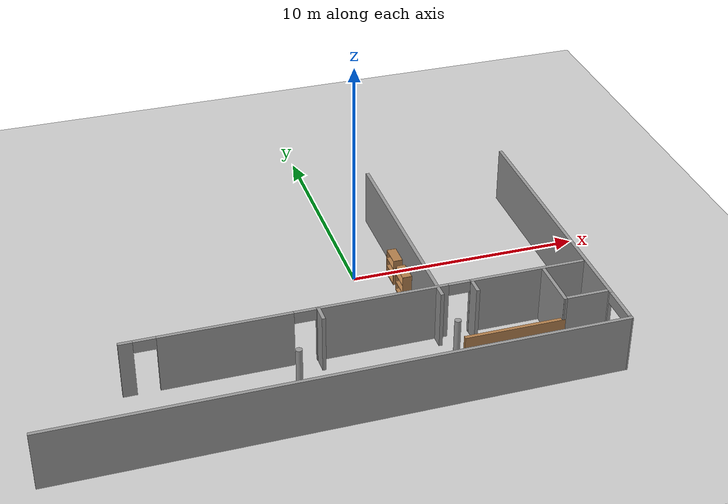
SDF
<sdf version="1.7">
 <world name="default">
  <model name="ground_plane">
   <static>1</static>
   <link name="link">
    <collision name="collision">
     <geometry><plane><normal>0 0 1</normal><size>100 100</size></plane></geometry>
     <surface><friction><ode><mu>100</mu><mu2>50</mu2></ode></friction></surface>
    </collision>
    <visual name="visual">
     <cast_shadows>0</cast_shadows>
     <geometry><plane><normal>0 0 1</normal><size>100 100</size></plane></geometry>
     <material>
      <script><uri>file://media/materials/scripts/gazebo.material</uri><name>Gazebo/Grey</name></script>
     </material>
    </visual>
   </link>
  </model>
  <model name="batimentH">
   <link name="Wall_37">
    <pose>7.50318 1.74251 0 0 0 -1.5708</pose>
    <visual name="Wall_37_Visual">
     <pose>0 0 1.25 0 -0 0</pose>
     <geometry><box><size>9.75 0.15 2.5</size></box></geometry>
     <material>
      <script><uri>file://media/materials/scripts/gazebo.material</uri><name>Gazebo/Grey</name></script>
      <ambient>1 1 1 1</ambient>
      <shader type="pixel"/>
     </material>
     <meta><layer>0</layer></meta>
    </visual>
    <collision name="Wall_37_Collision">
     <pose>0 0 1.25 0 -0 0</pose>
     <geometry><box><size>9.75 0.15 2.5</size></box></geometry>
     <surface>
      <friction>
       <ode><mu>1</mu><mu2>1</mu2><fdir1>0 0 0</fdir1><slip1>0</slip1><slip2>0</slip2></ode>
       <torsional>
        <coefficient>1</coefficient>
        <patch_radius>0</patch_radius>
        <surface_radius>0</surface_radius>
        <use_patch_radius>1</use_patch_radius>
        <ode><slip>0</slip></ode>
       </torsional>
      </friction>
      <bounce><restitution_coefficient>0</restitution_coefficient><threshold>1e+06</threshold></bounce>
      <contact>
       <collide_without_contact>0</collide_without_contact>
       <collide_without_contact_bitmask>1</collide_without_contact_bitmask>
       <collide_bitmask>1</collide_bitmask>
       <ode>
        <soft_cfm>0</soft_cfm>
        <soft_erp>0.2</soft_erp>
        <kp>1e+13</kp>
        <kd>1</kd>
        <max_vel>0.01</max_vel>
        <min_depth>0</min_depth>
       </ode>
       <bullet>
        <split_impulse>1</split_impulse>
        <split_impulse_penetration_threshold>-0.01</split_impulse_penetration_threshold>
        <soft_cfm>0</soft_cfm>
        <soft_erp>0.2</soft_erp>
        <kp>1e+13</kp>
        <kd>1</kd>
       </bullet>
      </contact>
     </surface>
    </collision>
   </link>
   <link name="Wall_39">
    <pose>4.29019 -2.53685 0 0 -0 0</pose>
    <visual name="Wall_39_Visual_0">
     <pose>-9.21688 0 1.25 0 -0 0</pose>
     <geometry><box><size>0.566242 0.15 2.5</size></box></geometry>
     <material>
      <script><uri>file://media/materials/scripts/gazebo.material</uri><name>Gazebo/Grey</name></script>
      <ambient>1 1 1 1</ambient>
      <shader type="pixel"/>
     </material>
     <meta><layer>0</layer></meta>
    </visual>
    <visual name="Wall_39_Visual_1">
     <pose>-5.3521 0 1.25 0 -0 0</pose>
     <geometry><box><size>5.36332 0.15 2.5</size></box></geometry>
     <material>
      <script><uri>file://media/materials/scripts/gazebo.material</uri><name>Gazebo/Grey</name></script>
      <ambient>1 1 1 1</ambient>
      <shader type="pixel"/>
     </material>
     <meta><layer>0</layer></meta>
    </visual>
    <visual name="Wall_39_Visual_2">
     <pose>0.951247 0 1.25 0 -0 0</pose>
     <geometry><box><size>5.44336 0.15 2.5</size></box></geometry>
     <material>
      <script><uri>file://media/materials/scripts/gazebo.material</uri><name>Gazebo/Grey</name></script>
      <ambient>1 1 1 1</ambient>
      <shader type="pixel"/>
     </material>
     <meta><layer>0</layer></meta>
    </visual>
    <visual name="Wall_39_Visual_3">
     <pose>7.03646 0 1.25 0 -0 0</pose>
     <geometry><box><size>4.92707 0.15 2.5</size></box></geometry>
     <material>
      <script><uri>file://media/materials/scripts/gazebo.material</uri><name>Gazebo/Grey</name></script>
      <ambient>1 1 1 1</ambient>
      <shader type="pixel"/>
     </material>
     <meta><layer>0</layer></meta>
    </visual>
    <visual name="Wall_39_Visual_4">
     <pose>-8.48376 0 2.25 0 -0 0</pose>
     <geometry><box><size>0.9 0.15 0.5</size></box></geometry>
     <material>
      <script><uri>file://media/materials/scripts/gazebo.material</uri><name>Gazebo/Grey</name></script>
      <ambient>1 1 1 1</ambient>
      <shader type="pixel"/>
     </material>
     <meta><layer>0</layer></meta>
    </visual>
    <visual name="Wall_39_Visual_5">
     <pose>-2.22043 0 2.25 0 -0 0</pose>
     <geometry><box><size>0.9 0.15 0.5</size></box></geometry>
     <material>
      <script><uri>file://media/materials/scripts/gazebo.material</uri><name>Gazebo/Grey</name></script>
      <ambient>1 1 1 1</ambient>
      <shader type="pixel"/>
     </material>
     <meta><layer>0</layer></meta>
    </visual>
    <visual name="Wall_39_Visual_6">
     <pose>4.12293 0 2.25 0 -0 0</pose>
     <geometry><box><size>0.9 0.15 0.5</size></box></geometry>
     <material>
      <script><uri>file://media/materials/scripts/gazebo.material</uri><name>Gazebo/Grey</name></script>
      <ambient>1 1 1 1</ambient>
      <shader type="pixel"/>
     </material>
     <meta><layer>0</layer></meta>
    </visual>
    <collision name="Wall_39_Collision_0">
     <pose>-9.21688 0 1.25 0 -0 0</pose>
     <geometry><box><size>0.566242 0.15 2.5</size></box></geometry>
     <surface>
      <friction>
       <ode><mu>1</mu><mu2>1</mu2><fdir1>0 0 0</fdir1><slip1>0</slip1><slip2>0</slip2></ode>
       <torsional>
        <coefficient>1</coefficient>
        <patch_radius>0</patch_radius>
        <surface_radius>0</surface_radius>
        <use_patch_radius>1</use_patch_radius>
        <ode><slip>0</slip></ode>
       </torsional>
      </friction>
      <bounce><restitution_coefficient>0</restitution_coefficient><threshold>1e+06</threshold></bounce>
      <contact>
       <collide_without_contact>0</collide_without_contact>
       <collide_without_contact_bitmask>1</collide_without_contact_bitmask>
       <collide_bitmask>1</collide_bitmask>
       <ode>
        <soft_cfm>0</soft_cfm>
        <soft_erp>0.2</soft_erp>
        <kp>1e+13</kp>
        <kd>1</kd>
        <max_vel>0.01</max_vel>
        <min_depth>0</min_depth>
       </ode>
       <bullet>
        <split_impulse>1</split_impulse>
        <split_impulse_penetration_threshold>-0.01</split_impulse_penetration_threshold>
        <soft_cfm>0</soft_cfm>
        <soft_erp>0.2</soft_erp>
        <kp>1e+13</kp>
        <kd>1</kd>
       </bullet>
      </contact>
     </surface>
    </collision>
    <collision name="Wall_39_Collision_2">
     <pose>0.951247 0 1.25 0 -0 0</pose>
     <geometry><box><size>5.44336 0.15 2.5</size></box></geometry>
     <surface>
      <friction>
       <ode><mu>1</mu><mu2>1</mu2><fdir1>0 0 0</fdir1><slip1>0</slip1><slip2>0</slip2></ode>
       <torsional>
        <coefficient>1</coefficient>
        <patch_radius>0</patch_radius>
        <surface_radius>0</surface_radius>
        <use_patch_radius>1</use_patch_radius>
        <ode><slip>0</slip></ode>
       </torsional>
      </friction>
      <bounce><restitution_coefficient>0</restitution_coefficient><threshold>1e+06</threshold></bounce>
      <contact>
       <collide_without_contact>0</collide_without_contact>
       <collide_without_contact_bitmask>1</collide_without_contact_bitmask>
       <collide_bitmask>1</collide_bitmask>
       <ode>
        <soft_cfm>0</soft_cfm>
        <soft_erp>0.2</soft_erp>
        <kp>1e+13</kp>
        <kd>1</kd>
        <max_vel>0.01</max_vel>
        <min_depth>0</min_depth>
       </ode>
       <bullet>
        <split_impulse>1</split_impulse>
        <split_impulse_penetration_threshold>-0.01</split_impulse_penetration_threshold>
        <soft_cfm>0</soft_cfm>
        <soft_erp>0.2</soft_erp>
        <kp>1e+13</kp>
        <kd>1</kd>
       </bullet>
      </contact>
     </surface>
    </collision>
    <collision name="Wall_39_Collision_1">
     <pose>-5.3521 0 1.25 0 -0 0</pose>
     <geometry><box><size>5.36332 0.15 2.5</size></box></geometry>
     <surface>
      <friction>
       <ode><mu>1</mu><mu2>1</mu2><fdir1>0 0 0</fdir1><slip1>0</slip1><slip2>0</slip2></ode>
       <torsional>
        <coefficient>1</coefficient>
        <patch_radius>0</patch_radius>
        <surface_radius>0</surface_radius>
        <use_patch_radius>1</use_patch_radius>
        <ode><slip>0</slip></ode>
       </torsional>
      </friction>
      <bounce><restitution_coefficient>0</restitution_coefficient><threshold>1e+06</threshold></bounce>
      <contact>
       <collide_without_contact>0</collide_without_contact>
       <collide_without_contact_bitmask>1</collide_without_contact_bitmask>
       <collide_bitmask>1</collide_bitmask>
       <ode>
        <soft_cfm>0</soft_cfm>
        <soft_erp>0.2</soft_erp>
        <kp>1e+13</kp>
        <kd>1</kd>
        <max_vel>0.01</max_vel>
        <min_depth>0</min_depth>
       </ode>
       <bullet>
        <split_impulse>1</split_impulse>
        <split_impulse_penetration_threshold>-0.01</split_impulse_penetration_threshold>
        <soft_cfm>0</soft_cfm>
        <soft_erp>0.2</soft_erp>
        <kp>1e+13</kp>
        <kd>1</kd>
       </bullet>
      </contact>
     </surface>
    </collision>
    <collision name="Wall_39_Collision_3">
     <pose>7.03646 0 1.25 0 -0 0</pose>
     <geometry><box><size>4.92707 0.15 2.5</size></box></geometry>
     <surface>
      <friction>
       <ode><mu>1</mu><mu2>1</mu2><fdir1>0 0 0</fdir1><slip1>0</slip1><slip2>0</slip2></ode>
       <torsional>
        <coefficient>1</coefficient>
        <patch_radius>0</patch_radius>
        <surface_radius>0</surface_radius>
        <use_patch_radius>1</use_patch_radius>
        <ode><slip>0</slip></ode>
       </torsional>
      </friction>
      <bounce><restitution_coefficient>0</restitution_coefficient><threshold>1e+06</threshold></bounce>
      <contact>
       <collide_without_contact>0</collide_without_contact>
       <collide_without_contact_bitmask>1</collide_without_contact_bitmask>
       <collide_bitmask>1</collide_bitmask>
       <ode>
        <soft_cfm>0</soft_cfm>
        <soft_erp>0.2</soft_erp>
        <kp>1e+13</kp>
        <kd>1</kd>
        <max_vel>0.01</max_vel>
        <min_depth>0</min_depth>
       </ode>
       <bullet>
        <split_impulse>1</split_impulse>
        <split_impulse_penetration_threshold>-0.01</split_impulse_penetration_threshold>
        <soft_cfm>0</soft_cfm>
        <soft_erp>0.2</soft_erp>
        <kp>1e+13</kp>
        <kd>1</kd>
       </bullet>
      </contact>
     </surface>
    </collision>
    <collision name="Wall_39_Collision_4">
     <pose>-8.48376 0 2.25 0 -0 0</pose>
     <geometry><box><size>0.9 0.15 0.5</size></box></geometry>
     <surface>
      <friction>
       <ode><mu>1</mu><mu2>1</mu2><fdir1>0 0 0</fdir1><slip1>0</slip1><slip2>0</slip2></ode>
       <torsional>
        <coefficient>1</coefficient>
        <patch_radius>0</patch_radius>
        <surface_radius>0</surface_radius>
        <use_patch_radius>1</use_patch_radius>
        <ode><slip>0</slip></ode>
       </torsional>
      </friction>
      <bounce><restitution_coefficient>0</restitution_coefficient><threshold>1e+06</threshold></bounce>
      <contact>
       <collide_without_contact>0</collide_without_contact>
       <collide_without_contact_bitmask>1</collide_without_contact_bitmask>
       <collide_bitmask>1</collide_bitmask>
       <ode>
        <soft_cfm>0</soft_cfm>
        <soft_erp>0.2</soft_erp>
        <kp>1e+13</kp>
        <kd>1</kd>
        <max_vel>0.01</max_vel>
        <min_depth>0</min_depth>
       </ode>
       <bullet>
        <split_impulse>1</split_impulse>
        <split_impulse_penetration_threshold>-0.01</split_impulse_penetration_threshold>
        <soft_cfm>0</soft_cfm>
        <soft_erp>0.2</soft_erp>
        <kp>1e+13</kp>
        <kd>1</kd>
       </bullet>
      </contact>
     </surface>
    </collision>
    <collision name="Wall_39_Collision_5">
     <pose>-2.22043 0 2.25 0 -0 0</pose>
     <geometry><box><size>0.9 0.15 0.5</size></box></geometry>
     <surface>
      <friction>
       <ode><mu>1</mu><mu2>1</mu2><fdir1>0 0 0</fdir1><slip1>0</slip1><slip2>0</slip2></ode>
       <torsional>
        <coefficient>1</coefficient>
        <patch_radius>0</patch_radius>
        <surface_radius>0</surface_radius>
        <use_patch_radius>1</use_patch_radius>
        <ode><slip>0</slip></ode>
       </torsional>
      </friction>
      <bounce><restitution_coefficient>0</restitution_coefficient><threshold>1e+06</threshold></bounce>
      <contact>
       <collide_without_contact>0</collide_without_contact>
       <collide_without_contact_bitmask>1</collide_without_contact_bitmask>
       <collide_bitmask>1</collide_bitmask>
       <ode>
        <soft_cfm>0</soft_cfm>
        <soft_erp>0.2</soft_erp>
        <kp>1e+13</kp>
        <kd>1</kd>
        <max_vel>0.01</max_vel>
        <min_depth>0</min_depth>
       </ode>
       <bullet>
        <split_impulse>1</split_impulse>
        <split_impulse_penetration_threshold>-0.01</split_impulse_penetration_threshold>
        <soft_cfm>0</soft_cfm>
        <soft_erp>0.2</soft_erp>
        <kp>1e+13</kp>
        <kd>1</kd>
       </bullet>
      </contact>
     </surface>
    </collision>
    <collision name="Wall_39_Collision_6">
     <pose>4.12293 0 2.25 0 -0 0</pose>
     <geometry><box><size>0.9 0.15 0.5</size></box></geometry>
     <surface>
      <friction>
       <ode><mu>1</mu><mu2>1</mu2><fdir1>0 0 0</fdir1><slip1>0</slip1><slip2>0</slip2></ode>
       <torsional>
        <coefficient>1</coefficient>
        <patch_radius>0</patch_radius>
        <surface_radius>0</surface_radius>
        <use_patch_radius>1</use_patch_radius>
        <ode><slip>0</slip></ode>
       </torsional>
      </friction>
      <bounce><restitution_coefficient>0</restitution_coefficient><threshold>1e+06</threshold></bounce>
      <contact>
       <collide_without_contact>0</collide_without_contact>
       <collide_without_contact_bitmask>1</collide_without_contact_bitmask>
       <collide_bitmask>1</collide_bitmask>
       <ode>
        <soft_cfm>0</soft_cfm>
        <soft_erp>0.2</soft_erp>
        <kp>1e+13</kp>
        <kd>1</kd>
        <max_vel>0.01</max_vel>
        <min_depth>0</min_depth>
       </ode>
       <bullet>
        <split_impulse>1</split_impulse>
        <split_impulse_penetration_threshold>-0.01</split_impulse_penetration_threshold>
        <soft_cfm>0</soft_cfm>
        <soft_erp>0.2</soft_erp>
        <kp>1e+13</kp>
        <kd>1</kd>
       </bullet>
      </contact>
     </surface>
    </collision>
   </link>
   <link name="Wall_42">
    <pose>2.61433 -2.89979 0 0 0 -1.5708</pose>
    <visual name="Wall_42_Visual">
     <pose>0 0 1.25 0 -0 0</pose>
     <geometry><box><size>0.75 0.15 2.5</size></box></geometry>
     <material>
      <script><uri>file://media/materials/scripts/gazebo.material</uri><name>Gazebo/Grey</name></script>
      <ambient>1 1 1 1</ambient>
      <shader type="pixel"/>
     </material>
     <meta><layer>0</layer></meta>
    </visual>
    <collision name="Wall_42_Collision">
     <pose>0 0 1.25 0 -0 0</pose>
     <geometry><box><size>0.75 0.15 2.5</size></box></geometry>
     <surface>
      <friction>
       <ode><mu>1</mu><mu2>1</mu2><fdir1>0 0 0</fdir1><slip1>0</slip1><slip2>0</slip2></ode>
       <torsional>
        <coefficient>1</coefficient>
        <patch_radius>0</patch_radius>
        <surface_radius>0</surface_radius>
        <use_patch_radius>1</use_patch_radius>
        <ode><slip>0</slip></ode>
       </torsional>
      </friction>
      <bounce><restitution_coefficient>0</restitution_coefficient><threshold>1e+06</threshold></bounce>
      <contact>
       <collide_without_contact>0</collide_without_contact>
       <collide_without_contact_bitmask>1</collide_without_contact_bitmask>
       <collide_bitmask>1</collide_bitmask>
       <ode>
        <soft_cfm>0</soft_cfm>
        <soft_erp>0.2</soft_erp>
        <kp>1e+13</kp>
        <kd>1</kd>
        <max_vel>0.01</max_vel>
        <min_depth>0</min_depth>
       </ode>
       <bullet>
        <split_impulse>1</split_impulse>
        <split_impulse_penetration_threshold>-0.01</split_impulse_penetration_threshold>
        <soft_cfm>0</soft_cfm>
        <soft_erp>0.2</soft_erp>
        <kp>1e+13</kp>
        <kd>1</kd>
       </bullet>
      </contact>
     </surface>
    </collision>
   </link>
   <link name="Wall_46">
    <pose>8.94655 -2.90008 0 0 0 -1.5708</pose>
    <visual name="Wall_46_Visual">
     <pose>0 0 1.25 0 -0 0</pose>
     <geometry><box><size>0.75 0.15 2.5</size></box></geometry>
     <material>
      <script><uri>file://media/materials/scripts/gazebo.material</uri><name>Gazebo/Grey</name></script>
      <ambient>1 1 1 1</ambient>
      <shader type="pixel"/>
     </material>
     <meta><layer>0</layer></meta>
    </visual>
    <collision name="Wall_46_Collision">
     <pose>0 0 1.25 0 -0 0</pose>
     <geometry><box><size>0.75 0.15 2.5</size></box></geometry>
     <surface>
      <friction>
       <ode><mu>1</mu><mu2>1</mu2><fdir1>0 0 0</fdir1><slip1>0</slip1><slip2>0</slip2></ode>
       <torsional>
        <coefficient>1</coefficient>
        <patch_radius>0</patch_radius>
        <surface_radius>0</surface_radius>
        <use_patch_radius>1</use_patch_radius>
        <ode><slip>0</slip></ode>
       </torsional>
      </friction>
      <bounce><restitution_coefficient>0</restitution_coefficient><threshold>1e+06</threshold></bounce>
      <contact>
       <collide_without_contact>0</collide_without_contact>
       <collide_without_contact_bitmask>1</collide_without_contact_bitmask>
       <collide_bitmask>1</collide_bitmask>
       <ode>
        <soft_cfm>0</soft_cfm>
        <soft_erp>0.2</soft_erp>
        <kp>1e+13</kp>
        <kd>1</kd>
        <max_vel>0.01</max_vel>
        <min_depth>0</min_depth>
       </ode>
       <bullet>
        <split_impulse>1</split_impulse>
        <split_impulse_penetration_threshold>-0.01</split_impulse_penetration_threshold>
        <soft_cfm>0</soft_cfm>
        <soft_erp>0.2</soft_erp>
        <kp>1e+13</kp>
        <kd>1</kd>
       </bullet>
      </contact>
     </surface>
    </collision>
   </link>
   <link name="Wall_52">
    <pose>2.47315 -6.68173 0 0 -0 0.000539</pose>
    <visual name="Wall_52_Visual">
     <pose>0 0 1.25 0 -0 0</pose>
     <geometry><box><size>22.9929 0.15 2.5</size></box></geometry>
     <material>
      <script><uri>file://media/materials/scripts/gazebo.material</uri><name>Gazebo/Grey</name></script>
      <ambient>1 1 1 1</ambient>
      <shader type="pixel"/>
     </material>
     <meta><layer>0</layer></meta>
    </visual>
    <collision name="Wall_52_Collision">
     <pose>0 0 1.25 0 -0 0</pose>
     <geometry><box><size>22.9929 0.15 2.5</size></box></geometry>
     <surface>
      <friction>
       <ode><mu>1</mu><mu2>1</mu2><fdir1>0 0 0</fdir1><slip1>0</slip1><slip2>0</slip2></ode>
       <torsional>
        <coefficient>1</coefficient>
        <patch_radius>0</patch_radius>
        <surface_radius>0</surface_radius>
        <use_patch_radius>1</use_patch_radius>
        <ode><slip>0</slip></ode>
       </torsional>
      </friction>
      <bounce><restitution_coefficient>0</restitution_coefficient><threshold>1e+06</threshold></bounce>
      <contact>
       <collide_without_contact>0</collide_without_contact>
       <collide_without_contact_bitmask>1</collide_without_contact_bitmask>
       <collide_bitmask>1</collide_bitmask>
       <ode>
        <soft_cfm>0</soft_cfm>
        <soft_erp>0.2</soft_erp>
        <kp>1e+13</kp>
        <kd>1</kd>
        <max_vel>0.01</max_vel>
        <min_depth>0</min_depth>
       </ode>
       <bullet>
        <split_impulse>1</split_impulse>
        <split_impulse_penetration_threshold>-0.01</split_impulse_penetration_threshold>
        <soft_cfm>0</soft_cfm>
        <soft_erp>0.2</soft_erp>
        <kp>1e+13</kp>
        <kd>1</kd>
       </bullet>
      </contact>
     </surface>
    </collision>
   </link>
   <link name="Wall_53">
    <pose>13.8985 -0.010927 0 0 -0 1.57021</pose>
    <visual name="Wall_53_Visual_0">
     <pose>-6.63903 0 1.25 0 -0 0</pose>
     <geometry><box><size>0.201223 0.15 2.5</size></box></geometry>
     <material>
      <script><uri>file://media/materials/scripts/gazebo.material</uri><name>Gazebo/Grey</name></script>
      <ambient>1 1 1 1</ambient>
      <shader type="pixel"/>
     </material>
     <meta><layer>0</layer></meta>
    </visual>
    <visual name="Wall_53_Visual_1">
     <pose>0.916637 0 1.25 0 -0 0</pose>
     <geometry><box><size>11.646 0.15 2.5</size></box></geometry>
     <material>
      <script><uri>file://media/materials/scripts/gazebo.material</uri><name>Gazebo/Grey</name></script>
      <ambient>1 1 1 1</ambient>
      <shader type="pixel"/>
     </material>
     <meta><layer>0</layer></meta>
    </visual>
    <visual name="Wall_53_Visual_2">
     <pose>-5.72239 0 2.25 0 -0 0</pose>
     <geometry><box><size>1.63205 0.15 0.5</size></box></geometry>
     <material>
      <script><uri>file://media/materials/scripts/gazebo.material</uri><name>Gazebo/Grey</name></script>
      <ambient>1 1 1 1</ambient>
      <shader type="pixel"/>
     </material>
     <meta><layer>0</layer></meta>
    </visual>
    <collision name="Wall_53_Collision_0">
     <pose>-6.63903 0 1.25 0 -0 0</pose>
     <geometry><box><size>0.201223 0.15 2.5</size></box></geometry>
     <surface>
      <friction>
       <ode><mu>1</mu><mu2>1</mu2><fdir1>0 0 0</fdir1><slip1>0</slip1><slip2>0</slip2></ode>
       <torsional>
        <coefficient>1</coefficient>
        <patch_radius>0</patch_radius>
        <surface_radius>0</surface_radius>
        <use_patch_radius>1</use_patch_radius>
        <ode><slip>0</slip></ode>
       </torsional>
      </friction>
      <bounce><restitution_coefficient>0</restitution_coefficient><threshold>1e+06</threshold></bounce>
      <contact>
       <collide_without_contact>0</collide_without_contact>
       <collide_without_contact_bitmask>1</collide_without_contact_bitmask>
       <collide_bitmask>1</collide_bitmask>
       <ode>
        <soft_cfm>0</soft_cfm>
        <soft_erp>0.2</soft_erp>
        <kp>1e+13</kp>
        <kd>1</kd>
        <max_vel>0.01</max_vel>
        <min_depth>0</min_depth>
       </ode>
       <bullet>
        <split_impulse>1</split_impulse>
        <split_impulse_penetration_threshold>-0.01</split_impulse_penetration_threshold>
        <soft_cfm>0</soft_cfm>
        <soft_erp>0.2</soft_erp>
        <kp>1e+13</kp>
        <kd>1</kd>
       </bullet>
      </contact>
     </surface>
    </collision>
    <collision name="Wall_53_Collision_1">
     <pose>0.916637 0 1.25 0 -0 0</pose>
     <geometry><box><size>11.646 0.15 2.5</size></box></geometry>
     <surface>
      <friction>
       <ode><mu>1</mu><mu2>1</mu2><fdir1>0 0 0</fdir1><slip1>0</slip1><slip2>0</slip2></ode>
       <torsional>
        <coefficient>1</coefficient>
        <patch_radius>0</patch_radius>
        <surface_radius>0</surface_radius>
        <use_patch_radius>1</use_patch_radius>
        <ode><slip>0</slip></ode>
       </torsional>
      </friction>
      <bounce><restitution_coefficient>0</restitution_coefficient><threshold>1e+06</threshold></bounce>
      <contact>
       <collide_without_contact>0</collide_without_contact>
       <collide_without_contact_bitmask>1</collide_without_contact_bitmask>
       <collide_bitmask>1</collide_bitmask>
       <ode>
        <soft_cfm>0</soft_cfm>
        <soft_erp>0.2</soft_erp>
        <kp>1e+13</kp>
        <kd>1</kd>
        <max_vel>0.01</max_vel>
        <min_depth>0</min_depth>
       </ode>
       <bullet>
        <split_impulse>1</split_impulse>
        <split_impulse_penetration_threshold>-0.01</split_impulse_penetration_threshold>
        <soft_cfm>0</soft_cfm>
        <soft_erp>0.2</soft_erp>
        <kp>1e+13</kp>
        <kd>1</kd>
       </bullet>
      </contact>
     </surface>
    </collision>
    <collision name="Wall_53_Collision_2">
     <pose>-5.72239 0 2.25 0 -0 0</pose>
     <geometry><box><size>1.63205 0.15 0.5</size></box></geometry>
     <surface>
      <friction>
       <ode><mu>1</mu><mu2>1</mu2><fdir1>0 0 0</fdir1><slip1>0</slip1><slip2>0</slip2></ode>
       <torsional>
        <coefficient>1</coefficient>
        <patch_radius>0</patch_radius>
        <surface_radius>0</surface_radius>
        <use_patch_radius>1</use_patch_radius>
        <ode><slip>0</slip></ode>
       </torsional>
      </friction>
      <bounce><restitution_coefficient>0</restitution_coefficient><threshold>1e+06</threshold></bounce>
      <contact>
       <collide_without_contact>0</collide_without_contact>
       <collide_without_contact_bitmask>1</collide_without_contact_bitmask>
       <collide_bitmask>1</collide_bitmask>
       <ode>
        <soft_cfm>0</soft_cfm>
        <soft_erp>0.2</soft_erp>
        <kp>1e+13</kp>
        <kd>1</kd>
        <max_vel>0.01</max_vel>
        <min_depth>0</min_depth>
       </ode>
       <bullet>
        <split_impulse>1</split_impulse>
        <split_impulse_penetration_threshold>-0.01</split_impulse_penetration_threshold>
        <soft_cfm>0</soft_cfm>
        <soft_erp>0.2</soft_erp>
        <kp>1e+13</kp>
        <kd>1</kd>
       </bullet>
      </contact>
     </surface>
    </collision>
   </link>
   <link name="Wall_55">
    <pose>9.9687 -4.75165 0 0 -0 3.14093</pose>
    <visual name="Wall_55_Visual">
     <pose>0 0 0.75 0 -0 0</pose>
     <geometry><box><size>4.21151 0.15 1.5</size></box></geometry>
     <material>
      <script><uri>file://media/materials/scripts/gazebo.material</uri><name>Gazebo/Wood</name></script>
      <ambient>1 1 1 1</ambient>
      <shader type="pixel"/>
     </material>
     <meta><layer>0</layer></meta>
    </visual>
    <collision name="Wall_55_Collision">
     <pose>0 0 0.75 0 -0 0</pose>
     <geometry><box><size>4.21151 0.15 1.5</size></box></geometry>
     <surface>
      <friction>
       <ode><mu>1</mu><mu2>1</mu2><fdir1>0 0 0</fdir1><slip1>0</slip1><slip2>0</slip2></ode>
       <torsional>
        <coefficient>1</coefficient>
        <patch_radius>0</patch_radius>
        <surface_radius>0</surface_radius>
        <use_patch_radius>1</use_patch_radius>
        <ode><slip>0</slip></ode>
       </torsional>
      </friction>
      <bounce><restitution_coefficient>0</restitution_coefficient><threshold>1e+06</threshold></bounce>
      <contact>
       <collide_without_contact>0</collide_without_contact>
       <collide_without_contact_bitmask>1</collide_without_contact_bitmask>
       <collide_bitmask>1</collide_bitmask>
       <ode>
        <soft_cfm>0</soft_cfm>
        <soft_erp>0.2</soft_erp>
        <kp>1e+13</kp>
        <kd>1</kd>
        <max_vel>0.01</max_vel>
        <min_depth>0</min_depth>
       </ode>
       <bullet>
        <split_impulse>1</split_impulse>
        <split_impulse_penetration_threshold>-0.01</split_impulse_penetration_threshold>
        <soft_cfm>0</soft_cfm>
        <soft_erp>0.2</soft_erp>
        <kp>1e+13</kp>
        <kd>1</kd>
       </bullet>
      </contact>
     </surface>
    </collision>
   </link>
   <link name="Wall_57">
    <pose>12.0044 -3.65982 0 0 0 -1.57287</pose>
    <visual name="Wall_57_Visual">
     <pose>0 0 1.25 0 -0 0</pose>
     <geometry><box><size>2.33135 0.15 2.5</size></box></geometry>
     <material>
      <script><uri>file://media/materials/scripts/gazebo.material</uri><name>Gazebo/Grey</name></script>
      <ambient>1 1 1 1</ambient>
      <shader type="pixel"/>
     </material>
     <meta><layer>0</layer></meta>
    </visual>
    <collision name="Wall_57_Collision">
     <pose>0 0 1.25 0 -0 0</pose>
     <geometry><box><size>2.33135 0.15 2.5</size></box></geometry>
     <surface>
      <friction>
       <ode><mu>1</mu><mu2>1</mu2><fdir1>0 0 0</fdir1><slip1>0</slip1><slip2>0</slip2></ode>
       <torsional>
        <coefficient>1</coefficient>
        <patch_radius>0</patch_radius>
        <surface_radius>0</surface_radius>
        <use_patch_radius>1</use_patch_radius>
        <ode><slip>0</slip></ode>
       </torsional>
      </friction>
      <bounce><restitution_coefficient>0</restitution_coefficient><threshold>1e+06</threshold></bounce>
      <contact>
       <collide_without_contact>0</collide_without_contact>
       <collide_without_contact_bitmask>1</collide_without_contact_bitmask>
       <collide_bitmask>1</collide_bitmask>
       <ode>
        <soft_cfm>0</soft_cfm>
        <soft_erp>0.2</soft_erp>
        <kp>1e+13</kp>
        <kd>1</kd>
        <max_vel>0.01</max_vel>
        <min_depth>0</min_depth>
       </ode>
       <bullet>
        <split_impulse>1</split_impulse>
        <split_impulse_penetration_threshold>-0.01</split_impulse_penetration_threshold>
        <soft_cfm>0</soft_cfm>
        <soft_erp>0.2</soft_erp>
        <kp>1e+13</kp>
        <kd>1</kd>
       </bullet>
      </contact>
     </surface>
    </collision>
   </link>
   <link name="Wall_59">
    <pose>12.9316 -4.75048 0 0 -0 0</pose>
    <visual name="Wall_59_Visual">
     <pose>0 0 1.25 0 -0 0</pose>
     <geometry><box><size>2 0.15 2.5</size></box></geometry>
     <material>
      <script><uri>file://media/materials/scripts/gazebo.material</uri><name>Gazebo/Grey</name></script>
      <ambient>1 1 1 1</ambient>
      <shader type="pixel"/>
     </material>
     <meta><layer>0</layer></meta>
    </visual>
    <collision name="Wall_59_Collision">
     <pose>0 0 1.25 0 -0 0</pose>
     <geometry><box><size>2 0.15 2.5</size></box></geometry>
     <surface>
      <friction>
       <ode><mu>1</mu><mu2>1</mu2><fdir1>0 0 0</fdir1><slip1>0</slip1><slip2>0</slip2></ode>
       <torsional>
        <coefficient>1</coefficient>
        <patch_radius>0</patch_radius>
        <surface_radius>0</surface_radius>
        <use_patch_radius>1</use_patch_radius>
        <ode><slip>0</slip></ode>
       </torsional>
      </friction>
      <bounce><restitution_coefficient>0</restitution_coefficient><threshold>1e+06</threshold></bounce>
      <contact>
       <collide_without_contact>0</collide_without_contact>
       <collide_without_contact_bitmask>1</collide_without_contact_bitmask>
       <collide_bitmask>1</collide_bitmask>
       <ode>
        <soft_cfm>0</soft_cfm>
        <soft_erp>0.2</soft_erp>
        <kp>1e+13</kp>
        <kd>1</kd>
        <max_vel>0.01</max_vel>
        <min_depth>0</min_depth>
       </ode>
       <bullet>
        <split_impulse>1</split_impulse>
        <split_impulse_penetration_threshold>-0.01</split_impulse_penetration_threshold>
        <soft_cfm>0</soft_cfm>
        <soft_erp>0.2</soft_erp>
        <kp>1e+13</kp>
        <kd>1</kd>
       </bullet>
      </contact>
     </surface>
    </collision>
   </link>
   <link name="link_0">
    <inertial>
     <mass>0.167804</mass>
     <inertia>
      <ixx>0.0790991</ixx>
      <ixy>0</ixy>
      <ixz>0</ixz>
      <iyy>0.0790991</iyy>
      <iyz>0</iyz>
      <izz>0.00148692</izz>
     </inertia>
    </inertial>
    <pose>7.53624 -4.7633 1.22558 0 -0 0</pose>
    <visual name="visual">
     <geometry><cylinder><radius>0.133124</radius><length>2.36714</length></cylinder></geometry>
     <material>
      <lighting>1</lighting>
      <script><uri>file://media/materials/scripts/gazebo.material</uri><name>Gazebo/Grey</name></script>
      <shader type="pixel"/>
     </material>
    </visual>
    <collision name="collision">
     <geometry><cylinder><radius>0.133124</radius><length>2.36714</length></cylinder></geometry>
     <surface>
      <friction>
       <ode><mu>1</mu><mu2>1</mu2><fdir1>0 0 0</fdir1><slip1>0</slip1><slip2>0</slip2></ode>
       <torsional>
        <coefficient>1</coefficient>
        <patch_radius>0</patch_radius>
        <surface_radius>0</surface_radius>
        <use_patch_radius>1</use_patch_radius>
        <ode><slip>0</slip></ode>
       </torsional>
      </friction>
      <bounce><restitution_coefficient>0</restitution_coefficient><threshold>1e+06</threshold></bounce>
      <contact>
       <collide_without_contact>0</collide_without_contact>
       <collide_without_contact_bitmask>1</collide_without_contact_bitmask>
       <collide_bitmask>1</collide_bitmask>
       <ode>
        <soft_cfm>0</soft_cfm>
        <soft_erp>0.2</soft_erp>
        <kp>1e+13</kp>
        <kd>1</kd>
        <max_vel>0.01</max_vel>
        <min_depth>0</min_depth>
       </ode>
       <bullet>
        <split_impulse>1</split_impulse>
        <split_impulse_penetration_threshold>-0.01</split_impulse_penetration_threshold>
        <soft_cfm>0</soft_cfm>
        <soft_erp>0.2</soft_erp>
        <kp>1e+13</kp>
        <kd>1</kd>
       </bullet>
      </contact>
     </surface>
    </collision>
   </link>
   <link name="link_0_clone">
    <inertial>
     <mass>0.167804</mass>
     <inertia>
      <ixx>0.0790991</ixx>
      <ixy>0</ixy>
      <ixz>0</ixz>
      <iyy>0.0790991</iyy>
      <iyz>0</iyz>
      <izz>0.00148692</izz>
     </inertia>
    </inertial>
    <pose>1.22562 -4.73597 1.22558 0 -0 0</pose>
    <visual name="visual">
     <geometry><cylinder><radius>0.133124</radius><length>2.36714</length></cylinder></geometry>
     <material>
      <lighting>1</lighting>
      <script><uri>file://media/materials/scripts/gazebo.material</uri><name>Gazebo/Grey</name></script>
      <shader type="pixel"/>
     </material>
    </visual>
    <collision name="collision">
     <geometry><cylinder><radius>0.133124</radius><length>2.36714</length></cylinder></geometry>
     <surface>
      <friction>
       <ode><mu>1</mu><mu2>1</mu2><fdir1>0 0 0</fdir1><slip1>0</slip1><slip2>0</slip2></ode>
       <torsional>
        <coefficient>1</coefficient>
        <patch_radius>0</patch_radius>
        <surface_radius>0</surface_radius>
        <use_patch_radius>1</use_patch_radius>
        <ode><slip>0</slip></ode>
       </torsional>
      </friction>
      <bounce><restitution_coefficient>0</restitution_coefficient><threshold>1e+06</threshold></bounce>
      <contact>
       <collide_without_contact>0</collide_without_contact>
       <collide_without_contact_bitmask>1</collide_without_contact_bitmask>
       <collide_bitmask>1</collide_bitmask>
       <ode>
        <soft_cfm>0</soft_cfm>
        <soft_erp>0.2</soft_erp>
        <kp>1e+13</kp>
        <kd>1</kd>
        <max_vel>0.01</max_vel>
        <min_depth>0</min_depth>
       </ode>
       <bullet>
        <split_impulse>1</split_impulse>
        <split_impulse_penetration_threshold>-0.01</split_impulse_penetration_threshold>
        <soft_cfm>0</soft_cfm>
        <soft_erp>0.2</soft_erp>
        <kp>1e+13</kp>
        <kd>1</kd>
       </bullet>
      </contact>
     </surface>
    </collision>
   </link>
   <static>1</static>
   <pose>-5.57165 -2.33842 0 0 -0 0</pose>
  </model>
  <model name="bookshelf">
   <static>1</static>
   <link name="link">
    <inertial><mass>1</mass></inertial>
    <collision name="back">
     <pose>0 0.005 0.6 0 -0 0</pose>
     <geometry><box><size>0.9 0.01 1.2</size></box></geometry>
    </collision>
    <visual name="visual1">
     <pose>0 0.005 0.6 0 -0 0</pose>
     <geometry><box><size>0.9 0.01 1.2</size></box></geometry>
     <material>
      <script><uri>file://media/materials/scripts/gazebo.material</uri><name>Gazebo/Wood</name></script>
     </material>
    </visual>
    <collision name="left_side">
     <pose>0.45 -0.195 0.6 0 -0 0</pose>
     <geometry><box><size>0.02 0.4 1.2</size></box></geometry>
    </collision>
    <visual name="visual2">
     <pose>0.45 -0.195 0.6 0 -0 0</pose>
     <geometry><box><size>0.02 0.4 1.2</size></box></geometry>
     <material>
      <script><uri>file://media/materials/scripts/gazebo.material</uri><name>Gazebo/Wood</name></script>
     </material>
    </visual>
    <collision name="right_side">
     <pose>-0.45 -0.195 0.6 0 -0 0</pose>
     <geometry><box><size>0.02 0.4 1.2</size></box></geometry>
    </collision>
    <visual name="visual3">
     <pose>-0.45 -0.195 0.6 0 -0 0</pose>
     <geometry><box><size>0.02 0.4 1.2</size></box></geometry>
     <material>
      <script><uri>file://media/materials/scripts/gazebo.material</uri><name>Gazebo/Wood</name></script>
     </material>
    </visual>
    <collision name="bottom">
     <pose>0 -0.195 0.03 0 -0 0</pose>
     <geometry><box><size>0.88 0.4 0.06</size></box></geometry>
    </collision>
    <visual name="visual4">
     <pose>0 -0.195 0.03 0 -0 0</pose>
     <geometry><box><size>0.88 0.4 0.06</size></box></geometry>
     <material>
      <script><uri>file://media/materials/scripts/gazebo.material</uri><name>Gazebo/Wood</name></script>
     </material>
    </visual>
    <collision name="top">
     <pose>0 -0.195 1.19 0 -0 0</pose>
     <geometry><box><size>0.88 0.4 0.02</size></box></geometry>
    </collision>
    <visual name="visual5">
     <pose>0 -0.195 1.19 0 -0 0</pose>
     <geometry><box><size>0.88 0.4 0.02</size></box></geometry>
     <material>
      <script><uri>file://media/materials/scripts/gazebo.material</uri><name>Gazebo/Wood</name></script>
     </material>
    </visual>
    <collision name="low_shelf">
     <pose>0 -0.195 0.43 0 -0 0</pose>
     <geometry><box><size>0.88 0.4 0.02</size></box></geometry>
    </collision>
    <visual name="visual6">
     <pose>0 -0.195 0.43 0 -0 0</pose>
     <geometry><box><size>0.88 0.4 0.02</size></box></geometry>
     <material>
      <script><uri>file://media/materials/scripts/gazebo.material</uri><name>Gazebo/Wood</name></script>
     </material>
    </visual>
    <collision name="high_shelf">
     <pose>0 -0.195 0.8 0 -0 0</pose>
     <geometry><box><size>0.88 0.4 0.02</size></box></geometry>
    </collision>
    <visual name="visual7">
     <pose>0 -0.195 0.8 0 -0 0</pose>
     <geometry><box><size>0.88 0.4 0.02</size></box></geometry>
     <material>
      <script><uri>file://media/materials/scripts/gazebo.material</uri><name>Gazebo/Wood</name></script>
     </material>
    </visual>
   </link>
   <pose>1.82743 -1.69447 0 0 0 -1.5708</pose>
  </model>
  <model name="bookshelf_clone">
   <static>1</static>
   <link name="link">
    <inertial><mass>1</mass></inertial>
    <collision name="back">
     <pose>0 0.005 0.6 0 -0 0</pose>
     <geometry><box><size>0.9 0.01 1.2</size></box></geometry>
    </collision>
    <visual name="visual1">
     <pose>0 0.005 0.6 0 -0 0</pose>
     <geometry><box><size>0.9 0.01 1.2</size></box></geometry>
     <material>
      <script><uri>file://media/materials/scripts/gazebo.material</uri><name>Gazebo/Wood</name></script>
     </material>
    </visual>
    <collision name="left_side">
     <pose>0.45 -0.195 0.6 0 -0 0</pose>
     <geometry><box><size>0.02 0.4 1.2</size></box></geometry>
    </collision>
    <visual name="visual2">
     <pose>0.45 -0.195 0.6 0 -0 0</pose>
     <geometry><box><size>0.02 0.4 1.2</size></box></geometry>
     <material>
      <script><uri>file://media/materials/scripts/gazebo.material</uri><name>Gazebo/Wood</name></script>
     </material>
    </visual>
    <collision name="right_side">
     <pose>-0.45 -0.195 0.6 0 -0 0</pose>
     <geometry><box><size>0.02 0.4 1.2</size></box></geometry>
    </collision>
    <visual name="visual3">
     <pose>-0.45 -0.195 0.6 0 -0 0</pose>
     <geometry><box><size>0.02 0.4 1.2</size></box></geometry>
     <material>
      <script><uri>file://media/materials/scripts/gazebo.material</uri><name>Gazebo/Wood</name></script>
     </material>
    </visual>
    <collision name="bottom">
     <pose>0 -0.195 0.03 0 -0 0</pose>
     <geometry><box><size>0.88 0.4 0.06</size></box></geometry>
    </collision>
    <visual name="visual4">
     <pose>0 -0.195 0.03 0 -0 0</pose>
     <geometry><box><size>0.88 0.4 0.06</size></box></geometry>
     <material>
      <script><uri>file://media/materials/scripts/gazebo.material</uri><name>Gazebo/Wood</name></script>
     </material>
    </visual>
    <collision name="top">
     <pose>0 -0.195 1.19 0 -0 0</pose>
     <geometry><box><size>0.88 0.4 0.02</size></box></geometry>
    </collision>
    <visual name="visual5">
     <pose>0 -0.195 1.19 0 -0 0</pose>
     <geometry><box><size>0.88 0.4 0.02</size></box></geometry>
     <material>
      <script><uri>file://media/materials/scripts/gazebo.material</uri><name>Gazebo/Wood</name></script>
     </material>
    </visual>
    <collision name="low_shelf">
     <pose>0 -0.195 0.43 0 -0 0</pose>
     <geometry><box><size>0.88 0.4 0.02</size></box></geometry>
    </collision>
    <visual name="visual6">
     <pose>0 -0.195 0.43 0 -0 0</pose>
     <geometry><box><size>0.88 0.4 0.02</size></box></geometry>
     <material>
      <script><uri>file://media/materials/scripts/gazebo.material</uri><name>Gazebo/Wood</name></script>
     </material>
    </visual>
    <collision name="high_shelf">
     <pose>0 -0.195 0.8 0 -0 0</pose>
     <geometry><box><size>0.88 0.4 0.02</size></box></geometry>
    </collision>
    <visual name="visual7">
     <pose>0 -0.195 0.8 0 -0 0</pose>
     <geometry><box><size>0.88 0.4 0.02</size></box></geometry>
     <material>
      <script><uri>file://media/materials/scripts/gazebo.material</uri><name>Gazebo/Wood</name></script>
     </material>
    </visual>
   </link>
   <pose>1.84537 -0.425146 0 0 0 -1.5708</pose>
  </model>
 </world>
</sdf>
